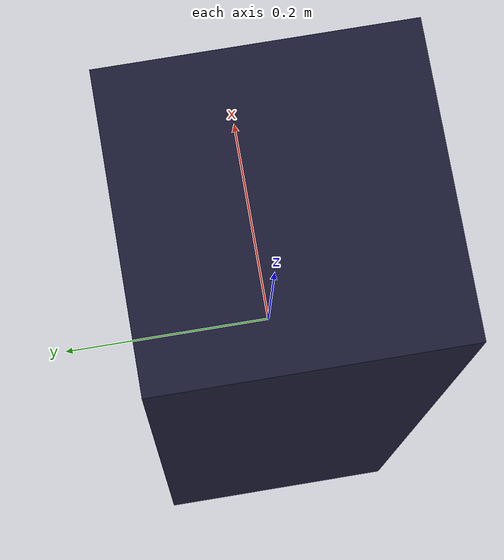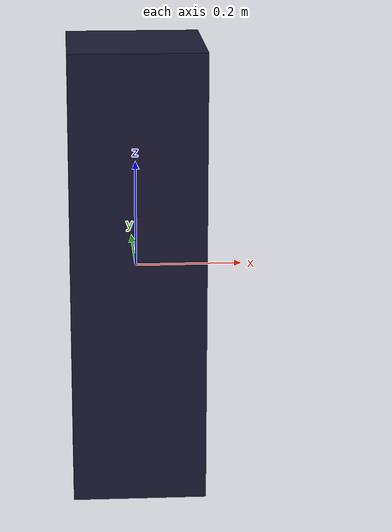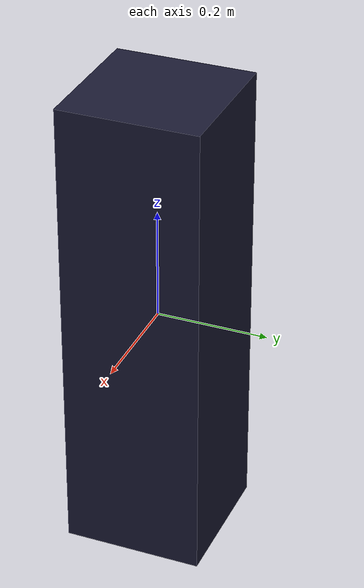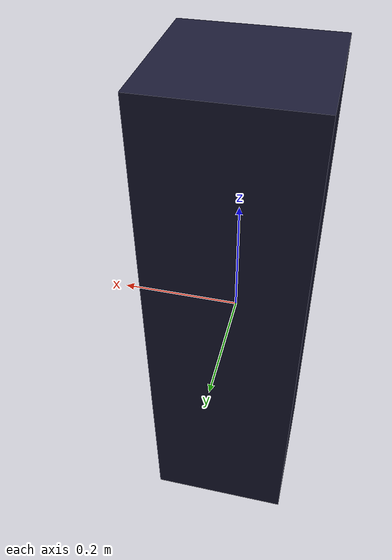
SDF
<?xml version="1.0" ?>
<sdf version="1.4">

<physics type="ode">

      <ode>

        <constraints>
          <contact_max_correcting_vel>0.1</contact_max_correcting_vel>
          <contact_surface_layer>0.0001</contact_surface_layer>
        </constraints>
      	</ode>
	<max_contacts>10</max_contacts>
	</physics>

	<model name="box">

	        <static>false</static>
		<link name="link">

		      <collision name="collision">
			<geometry>
			  <box>
			    <size>0.25 0.25 0.85</size>
			  </box>
			</geometry>
		      </collision>

		   <visual name="visual">

 			<material>
			  <ambient>0.1 0.1 0.1 1</ambient>
			  <diffuse>0.1 0.1 0.2 1</diffuse>
			  <specular>0 0 0 0</specular>
			  <emissive>0 0 0 1</emissive>
			</material>

			<geometry>
			  <box>
			    <size>0.25 0.25 0.85</size>
			  </box>
			</geometry>
		      </visual>

		</link>
	</model>
</sdf>
